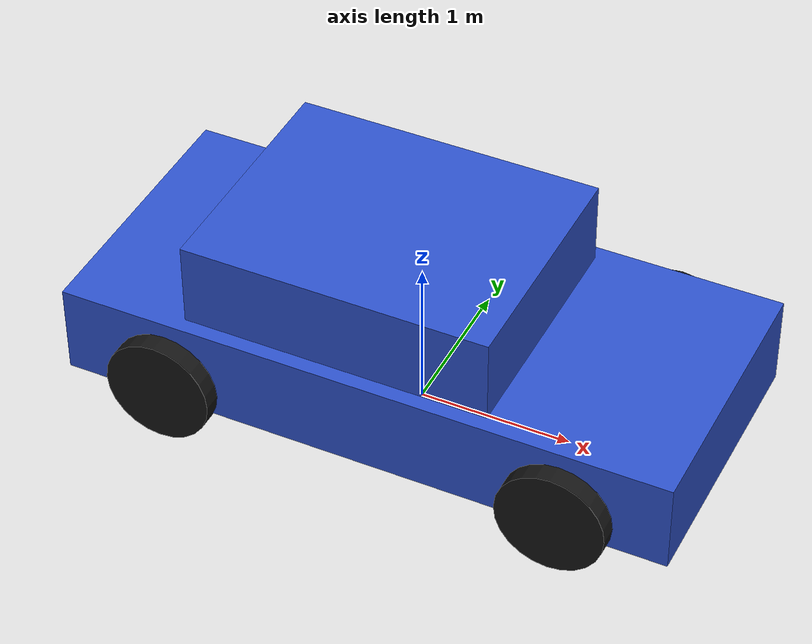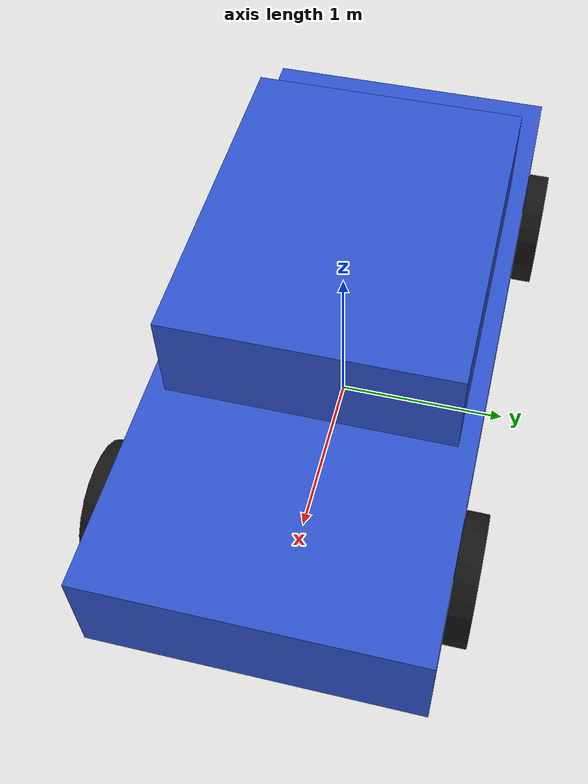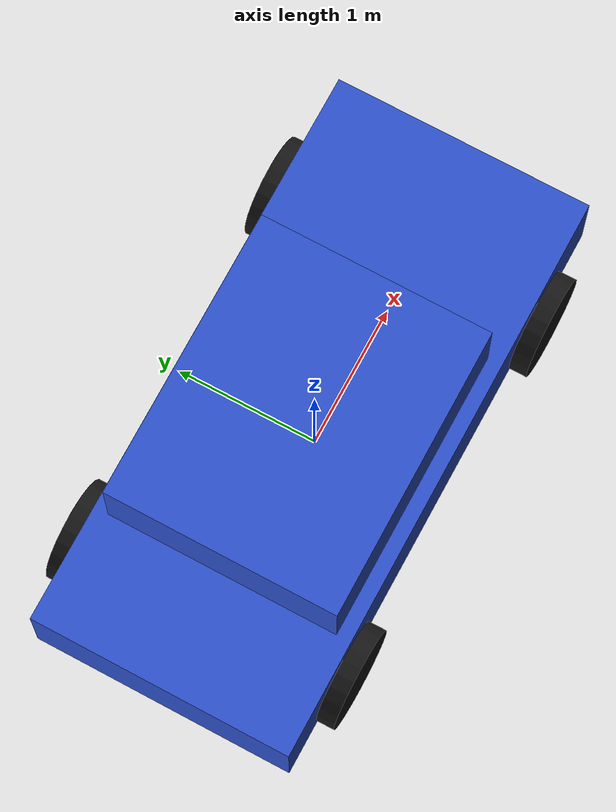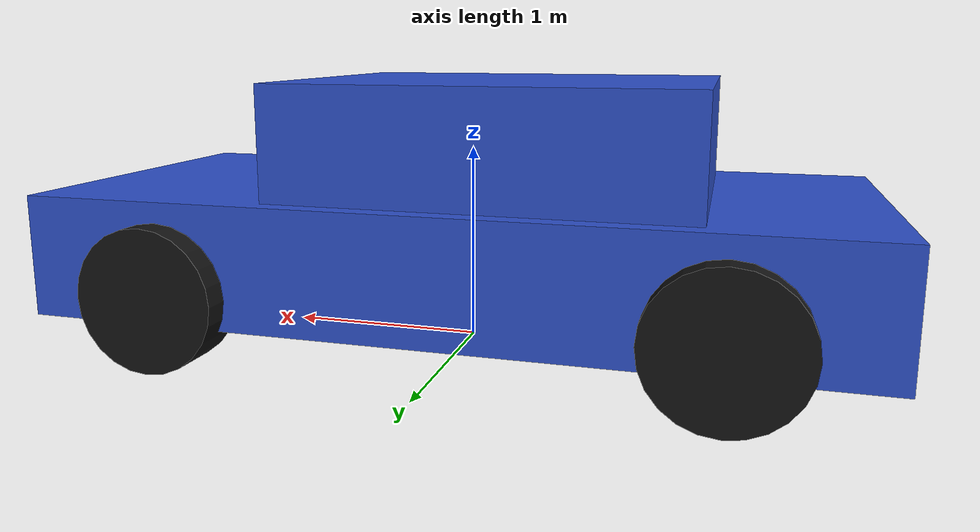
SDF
<?xml version="1.0" ?>
<sdf version="1.9">
  <model name="car">
    <static>true</static>
    <link name="link">
      <visual name="chassis">
        <pose>0 0 0.5 0 0 0</pose>
        <geometry>
          <box><size>4.0 1.8 0.6</size></box>
        </geometry>
        <material>
          <ambient>0.13 0.22 0.55 1</ambient>
          <diffuse>0.18 0.32 0.80 1</diffuse>
        </material>
      </visual>
      <visual name="cabin">
        <pose>-0.2 0 1.05 0 0 0</pose>
        <geometry>
          <box><size>2.0 1.6 0.6</size></box>
        </geometry>
        <material>
          <ambient>0.13 0.22 0.55 1</ambient>
          <diffuse>0.18 0.32 0.80 1</diffuse>
        </material>
      </visual>
      <visual name="wheel_fl">
        <pose>1.3 0.9 0.35 1.5708 0 0</pose>
        <geometry><cylinder><radius>0.35</radius><length>0.25</length></cylinder></geometry>
        <material><ambient>0.05 0.05 0.05 1</ambient><diffuse>0.08 0.08 0.08 1</diffuse></material>
      </visual>
      <visual name="wheel_fr">
        <pose>1.3 -0.9 0.35 1.5708 0 0</pose>
        <geometry><cylinder><radius>0.35</radius><length>0.25</length></cylinder></geometry>
        <material><ambient>0.05 0.05 0.05 1</ambient><diffuse>0.08 0.08 0.08 1</diffuse></material>
      </visual>
      <visual name="wheel_rl">
        <pose>-1.3 0.9 0.35 1.5708 0 0</pose>
        <geometry><cylinder><radius>0.35</radius><length>0.25</length></cylinder></geometry>
        <material><ambient>0.05 0.05 0.05 1</ambient><diffuse>0.08 0.08 0.08 1</diffuse></material>
      </visual>
      <visual name="wheel_rr">
        <pose>-1.3 -0.9 0.35 1.5708 0 0</pose>
        <geometry><cylinder><radius>0.35</radius><length>0.25</length></cylinder></geometry>
        <material><ambient>0.05 0.05 0.05 1</ambient><diffuse>0.08 0.08 0.08 1</diffuse></material>
      </visual>
      <collision name="col">
        <pose>0 0 0.6 0 0 0</pose>
        <geometry><box><size>4.0 1.8 1.2</size></box></geometry>
      </collision>
    </link>
  </model>
</sdf>
